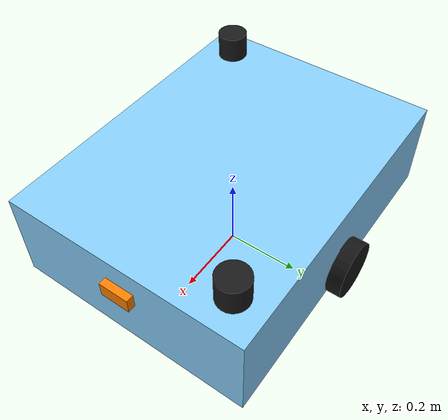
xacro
<?xml version="1.0"?>
<robot xmlns:xacro="http://www.ros.org/wiki/xacro" name="cognitive_amr">

  <!-- ══════════════════════════════════════════════════
       ROBOT PARAMETERS — change dimensions here only
       ══════════════════════════════════════════════════ -->
  <xacro:property name="robot_length"      value="0.85"/>   <!-- meters -->
  <xacro:property name="robot_width"       value="0.65"/>
  <xacro:property name="robot_height"      value="0.25"/>

  <xacro:property name="drive_wheel_radius"  value="0.075"/>  <!-- 150mm dia -->
  <xacro:property name="drive_wheel_width"   value="0.05"/>   <!-- 50mm wide -->
  <xacro:property name="wheel_separation"    value="0.60"/>   <!-- center-to-center -->

  <xacro:property name="caster_wheel_radius"  value="0.030"/>
  <xacro:property name="caster_wheel_width"   value="0.025"/>
  <xacro:property name="caster_x_offset"      value="0.30"/>

  <xacro:property name="robot_mass"   value="50.0"/>    <!-- kg -->
  <xacro:property name="wheel_mass"   value="2.5"/>     <!-- kg per wheel -->

  <!-- Chassis bottom z-position (computed from drive wheel radius) -->
  <xacro:property name="chassis_z_offset" value="${drive_wheel_radius}"/>

  <!-- Material definitions -->
  <material name="dark_gray">
    <color rgba="0.2 0.2 0.2 1.0"/>
  </material>
  <material name="orange">
    <color rgba="1.0 0.5 0.0 1.0"/>
  </material>
  <material name="black">
    <color rgba="0.05 0.05 0.05 1.0"/>
  </material>
  <material name="lidar_blue">
    <color rgba="0.0 0.4 0.9 0.9"/>
  </material>

  <!-- Include sub-components -->
  <xacro:include filename="$(find cognitive_amr_description)/urdf/base.xacro"/>
  <xacro:include filename="$(find cognitive_amr_description)/urdf/wheels.xacro"/>
  <xacro:include filename="$(find cognitive_amr_description)/urdf/ros2_control.xacro"/>

  <!-- Instantiate components -->
  <xacro:base_link/>

  <!-- Drive wheels — y = ±(chassis_width/2 + small_gap) = ±0.34 -->
  <xacro:drive_wheel side="left"  y_reflect="1"  joint_origin_y="0.34"/>
  <xacro:drive_wheel side="right" y_reflect="-1" joint_origin_y="-0.34"/>

  <!-- Caster wheels — 300mm fore and aft of center -->
  <xacro:caster_wheel side="front" x_offset="0.30"/>
  <xacro:caster_wheel side="rear"  x_offset="-0.30"/>

  <xacro:ros2_control_interface/>

</robot>

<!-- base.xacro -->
<robot xmlns:xacro="http://www.ros.org/wiki/xacro">
<xacro:macro name="base_link">

  <!-- ── Properties (inherited from top-level xacro) ── -->
  <!-- robot_length=0.85, robot_width=0.65, robot_height=0.25 -->
  <!-- drive_wheel_radius=0.075 -->

  <link name="base_footprint"/>

  <joint name="base_footprint_joint" type="fixed">
    <parent link="base_footprint"/>
    <child  link="base_link"/>
    <!-- Lift by exactly one wheel radius so wheels touch ground -->
    <origin xyz="0 0 ${drive_wheel_radius + robot_height/2}" rpy="0 0 0"/>
  </joint>

  <!-- ══ CHASSIS ══════════════════════════════════════════ -->
  <link name="base_link">
    <visual>
      <origin xyz="0 0 0" rpy="0 0 0"/>
      <geometry>
        <box size="${robot_length} ${robot_width} ${robot_height}"/>
      </geometry>
      <material name="robot_blue">
        <color rgba="0.53 0.81 0.98 1.0"/>  <!-- CAD blue color -->
      </material>
    </visual>
    <collision>
      <origin xyz="0 0 0" rpy="0 0 0"/>
      <geometry>
        <box size="0.85 0.65 0.25"/>
      </geometry>
    </collision>
    <inertial>
      <mass value="45.0"/>
      <origin xyz="0 0 0" rpy="0 0 0"/>
      <inertia
        ixx="0.8526" ixy="0" ixz="0"
        iyy="1.3729" iyz="0"
        izz="1.9453"/>
    </inertial>
  </link>

  <gazebo reference="base_link">
    <material>Gazebo/SkyBlue</material>
  </gazebo>

  <!-- ══ FRONT-LEFT LiDAR ════════════════════════════════ -->
  <!-- Positioned at top front-left corner of chassis -->
  <link name="lidar_front_left_link">
    <visual>
      <origin xyz="0 0 0" rpy="0 0 0"/>
      <geometry>
        <!-- Cylinder standing upright like your CAD -->
        <cylinder radius="0.04" length="0.07"/>
      </geometry>
      <material name="lidar_dark">
        <color rgba="0.1 0.1 0.1 1.0"/>
      </material>
    </visual>
    <collision>
      <geometry><cylinder radius="0.04" length="0.07"/></geometry>
    </collision>
    <inertial>
      <mass value="0.2"/>
      <inertia ixx="0.0001" ixy="0" ixz="0"
               iyy="0.0001" iyz="0" izz="0.0001"/>
    </inertial>
  </link>

  <joint name="lidar_front_left_joint" type="fixed">
    <parent link="base_link"/>
    <child  link="lidar_front_left_link"/>
    <!-- top surface of chassis = +0.125m, then half cylinder height -->
    <origin xyz="0.34 0.24 0.16" rpy="0 0 0"/>
  </joint>

  <gazebo reference="lidar_front_left_link">
    <material>Gazebo/Black</material>
    <sensor name="lidar_front_left" type="ray">
      <always_on>true</always_on>
      <visualize>false</visualize>
      <update_rate>15</update_rate>
      <ray>
        <scan>
          <horizontal>
            <samples>540</samples>
            <resolution>1</resolution>
            <min_angle>${-3*pi/4}</min_angle>
            <max_angle>${3*pi/4}</max_angle>
          </horizontal>
        </scan>
        <range>
          <min>0.10</min><max>20.0</max><resolution>0.01</resolution>
        </range>
        <noise><type>gaussian</type><mean>0.0</mean><stddev>0.01</stddev></noise>
      </ray>
      <plugin name="lidar_fl_plugin" filename="libgazebo_ros_ray_sensor.so">
        <ros>
          <remapping>~/out:=/scan/lidar_front_left</remapping>
        </ros>
        <output_type>sensor_msgs/LaserScan</output_type>
        <frame_name>lidar_front_left_link</frame_name>
      </plugin>
    </sensor>
  </gazebo>

  <!-- ══ BACK-RIGHT LiDAR ════════════════════════════════ -->
  <!-- Rotated 180° to cover the opposite arc -->
  <link name="lidar_back_right_link">
    <visual>
      <origin xyz="0 0 0" rpy="0 0 0"/>
      <geometry>
        <cylinder radius="0.04" length="0.07"/>
      </geometry>
      <material name="lidar_dark"/>
    </visual>
    <collision>
      <geometry><cylinder radius="0.04" length="0.07"/></geometry>
    </collision>
    <inertial>
      <mass value="0.2"/>
      <inertia ixx="0.0001" ixy="0" ixz="0"
               iyy="0.0001" iyz="0" izz="0.0001"/>
    </inertial>
  </link>

  <joint name="lidar_back_right_joint" type="fixed">
    <parent link="base_link"/>
    <child  link="lidar_back_right_link"/>
    <!-- Back-right corner, same height, yaw=pi faces opposite direction -->
    <origin xyz="-0.34 -0.24 0.16" rpy="0 0 ${pi}"/>
  </joint>

  <gazebo reference="lidar_back_right_link">
    <material>Gazebo/Black</material>
    <sensor name="lidar_back_right" type="ray">
      <always_on>true</always_on>
      <visualize>false</visualize>
      <update_rate>15</update_rate>
      <ray>
        <scan>
          <horizontal>
            <samples>540</samples>
            <resolution>1</resolution>
            <min_angle>${-3*pi/4}</min_angle>
            <max_angle>${3*pi/4}</max_angle>
          </horizontal>
        </scan>
        <range>
          <min>0.10</min><max>20.0</max><resolution>0.01</resolution>
        </range>
        <noise><type>gaussian</type><mean>0.0</mean><stddev>0.01</stddev></noise>
      </ray>
      <plugin name="lidar_br_plugin" filename="libgazebo_ros_ray_sensor.so">
        <ros>
          <remapping>~/out:=/scan/lidar_back_right</remapping>
        </ros>
        <output_type>sensor_msgs/LaserScan</output_type>
        <frame_name>lidar_back_right_link</frame_name>
      </plugin>
    </sensor>
  </gazebo>

  <!-- ══ FRONT CAMERA ════════════════════════════════════ -->
  <link name="camera_link">
    <visual>
      <origin xyz="0 0 0" rpy="0 0 0"/>
      <geometry>
        <!-- Small box mounted flush on front face -->
        <box size="0.04 0.08 0.04"/>
      </geometry>
      <material name="camera_orange">
        <color rgba="1.0 0.5 0.0 1.0"/>
      </material>
    </visual>
    <collision>
      <geometry><box size="0.04 0.08 0.04"/></geometry>
    </collision>
    <inertial>
      <mass value="0.1"/>
      <inertia ixx="0.0001" ixy="0" ixz="0"
               iyy="0.0001" iyz="0" izz="0.0001"/>
    </inertial>
  </link>

  <link name="camera_optical_link"/>

  <joint name="camera_joint" type="fixed">
    <parent link="base_link"/>
    <child  link="camera_link"/>
    <!-- Front face center, slightly above midline -->
    <origin xyz="0.425 0.0 0.04" rpy="0 0 0"/>
  </joint>

  <joint name="camera_optical_joint" type="fixed">
    <parent link="camera_link"/>
    <child  link="camera_optical_link"/>
    <origin xyz="0 0 0" rpy="${-pi/2} 0 ${-pi/2}"/>
  </joint>

  <gazebo reference="camera_link">
    <material>Gazebo/Orange</material>
    <sensor name="front_camera" type="camera">
      <always_on>true</always_on>
      <visualize>false</visualize>
      <update_rate>10</update_rate>
      <camera>
        <horizontal_fov>1.3962634</horizontal_fov>
        <image>
          <width>640</width><height>480</height>
          <format>R8G8B8</format>
        </image>
        <clip><near>0.05</near><far>30.0</far></clip>
      </camera>
      <plugin name="camera_plugin" filename="libgazebo_ros_camera.so">
        <ros>
          <remapping>image_raw:=/camera/image_raw</remapping>
          <remapping>camera_info:=/camera/camera_info</remapping>
        </ros>
        <frame_name>camera_optical_link</frame_name>
      </plugin>
    </sensor>
  </gazebo>

</xacro:macro>
</robot>

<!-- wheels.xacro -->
<robot xmlns:xacro="http://www.ros.org/wiki/xacro">

  <!-- ══ DRIVE WHEELS (left and right sides) ═════════════ -->
  <xacro:macro name="drive_wheel" params="side y_reflect joint_origin_y">

    <link name="${side}_wheel_link">
      <visual>
        <!-- rpy pi/2 rotates cylinder to lie on its side = disc shape -->
        <origin xyz="0 0 0" rpy="${pi/2} 0 0"/>
        <geometry>
          <cylinder radius="0.075" length="0.05"/>
        </geometry>
        <material name="wheel_dark">
          <color rgba="0.08 0.08 0.08 1.0"/>
        </material>
      </visual>
      <collision>
        <origin xyz="0 0 0" rpy="${pi/2} 0 0"/>
        <geometry>
          <cylinder radius="0.075" length="0.05"/>
        </geometry>
      </collision>
      <inertial>
        <mass value="2.5"/>
        <origin xyz="0 0 0" rpy="${pi/2} 0 0"/>
        <inertia
          ixx="0.00286" ixy="0" ixz="0"
          iyy="0.00286" iyz="0"
          izz="0.00703"/>
      </inertial>
    </link>

    <joint name="${side}_wheel_joint" type="continuous">
      <parent link="base_link"/>
      <child  link="${side}_wheel_link"/>
      <!-- x=0 (axle at center length)
           y=±0.30 (just outside chassis edge 0.325 - half wheel width)
           z=-0.075 (drop to ground level in base_link frame) -->
      <origin xyz="0 ${joint_origin_y} -${drive_wheel_radius}" rpy="0 0 0"/>
      <axis xyz="0 1 0"/>
      <dynamics damping="0.01" friction="0.1"/>
      <limit effort="100" velocity="10.0"/>
    </joint>

    <gazebo reference="${side}_wheel_link">
      <material>Gazebo/Black</material>
      <mu1>1.5</mu1>
      <mu2>1.0</mu2>
      <kp>500000</kp>
      <kd>10</kd>
      <minDepth>0.001</minDepth>
    </gazebo>

  </xacro:macro>

  <!-- ══ CASTER WHEELS (front and rear spheres) ══════════ -->
  <xacro:macro name="caster_wheel" params="side x_offset">

    <link name="${side}_caster_bracket_link">
      <inertial>
        <mass value="0.05"/>
        <inertia ixx="0.0001" ixy="0" ixz="0"
                 iyy="0.0001" iyz="0" izz="0.0001"/>
      </inertial>
    </link>

    <joint name="${side}_caster_bracket_joint" type="fixed">
      <parent link="base_link"/>
      <child  link="${side}_caster_bracket_link"/>
      <!-- x_offset: front=+0.30, rear=-0.30
           z=-0.075 drops to ground level, then +0.030 up to sphere center -->
      <origin xyz="${x_offset} 0 ${-(robot_height/2 + drive_wheel_radius - caster_wheel_radius)}" rpy="0 0 0"/>
    </joint>

    <link name="${side}_caster_wheel_link">
      <visual>
        <geometry>
          <sphere radius="0.030"/>
        </geometry>
        <material name="wheel_dark"/>
      </visual>
      <collision>
        <geometry>
          <sphere radius="0.030"/>
        </geometry>
      </collision>
      <inertial>
        <mass value="0.3"/>
        <inertia
          ixx="0.000108" ixy="0" ixz="0"
          iyy="0.000108" iyz="0"
          izz="0.000108"/>
      </inertial>
    </link>

    <joint name="${side}_caster_wheel_joint" type="fixed">
      <parent link="${side}_caster_bracket_link"/>
      <child  link="${side}_caster_wheel_link"/>
      <origin xyz="0 0 0" rpy="0 0 0"/>
    </joint>

    <!-- Zero friction — sphere rolls freely in all directions -->
    <gazebo reference="${side}_caster_wheel_link">
      <material>Gazebo/DarkGray</material>
      <mu1>0.0</mu1>
      <mu2>0.0</mu2>
      <kp>100000</kp>
      <kd>1</kd>
    </gazebo>

  </xacro:macro>

</robot>
